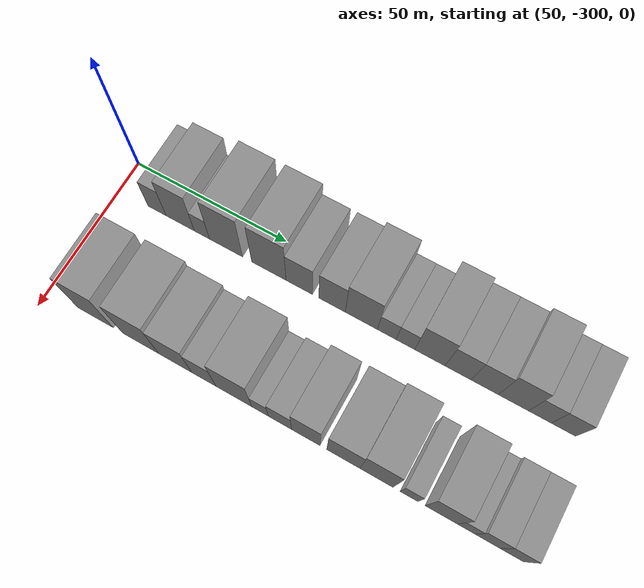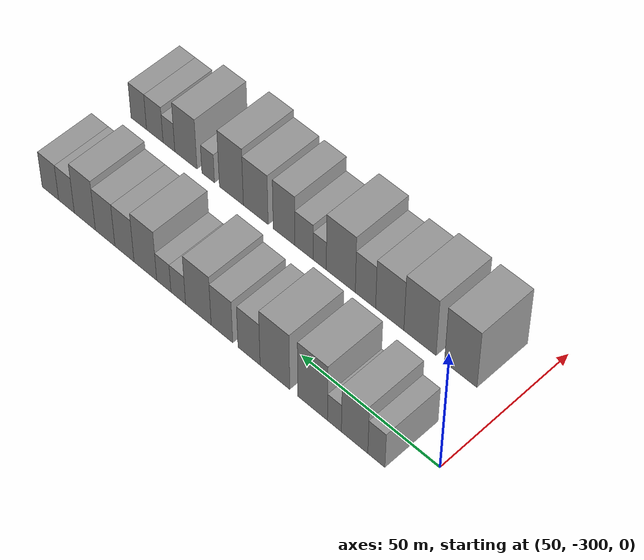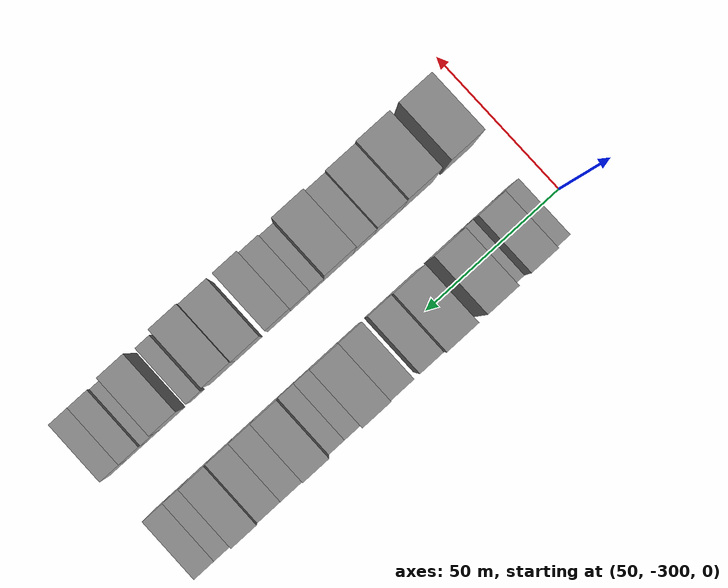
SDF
<sdf version="1.6">
 <world name="default">
  <model name="building_1">
   <static>1</static>
   <pose>50.0000 -286.9700 0 0.000000 0.000000 0.000000</pose>
   <link name="link">
    <pose>0 0 7.50 0 0 0</pose>
    <collision name="collision"><geometry><box><size>20.0000 6.0599 15.0000</size></box></geometry></collision>
    <visual name="visual">
     <cast_shadows>0</cast_shadows>
     <geometry><box><size>20.0000 6.0599 15.0000</size></box></geometry>
     <material>
      <script>
       <uri>model://grey_wall/materials/scripts</uri>
       <uri>model://grey_wall/materials/textures</uri>
       <name>vrc/grey_wall</name>
      </script>
     </material>
    </visual>
   </link>
  </model>
  <model name="building_2">
   <static>1</static>
   <pose>50.0000 -279.1994 0 0.000000 0.000000 0.000000</pose>
   <link name="link">
    <pose>0 0 10.50 0 0 0</pose>
    <collision name="collision"><geometry><box><size>20.0000 9.4813 21.0000</size></box></geometry></collision>
    <visual name="visual">
     <cast_shadows>0</cast_shadows>
     <geometry><box><size>20.0000 9.4813 21.0000</size></box></geometry>
     <material>
      <script>
       <uri>model://grey_wall/materials/scripts</uri>
       <uri>model://grey_wall/materials/textures</uri>
       <name>vrc/grey_wall</name>
      </script>
     </material>
    </visual>
   </link>
  </model>
  <model name="building_3">
   <static>1</static>
   <pose>50.0000 -271.9404 0 0.000000 0.000000 0.000000</pose>
   <link name="link">
    <pose>0 0 6.00 0 0 0</pose>
    <collision name="collision"><geometry><box><size>20.0000 5.0366 12.0000</size></box></geometry></collision>
    <visual name="visual">
     <cast_shadows>0</cast_shadows>
     <geometry><box><size>20.0000 5.0366 12.0000</size></box></geometry>
     <material>
      <script>
       <uri>model://grey_wall/materials/scripts</uri>
       <uri>model://grey_wall/materials/textures</uri>
       <name>vrc/grey_wall</name>
      </script>
     </material>
    </visual>
   </link>
  </model>
  <model name="building_4">
   <static>1</static>
   <pose>50.0000 -263.9885 0 0.000000 0.000000 0.000000</pose>
   <link name="link">
    <pose>0 0 12.00 0 0 0</pose>
    <collision name="collision"><geometry><box><size>20.0000 10.8672 24.0000</size></box></geometry></collision>
    <visual name="visual">
     <cast_shadows>0</cast_shadows>
     <geometry><box><size>20.0000 10.8672 24.0000</size></box></geometry>
     <material>
      <script>
       <uri>model://grey_wall/materials/scripts</uri>
       <uri>model://grey_wall/materials/textures</uri>
       <name>vrc/grey_wall</name>
      </script>
     </material>
    </visual>
   </link>
  </model>
  <model name="building_5">
   <static>1</static>
   <pose>50.0000 -250.0232 0 0.000000 0.000000 0.000000</pose>
   <link name="link">
    <pose>0 0 12.00 0 0 0</pose>
    <collision name="collision"><geometry><box><size>20.0000 11.0633 24.0000</size></box></geometry></collision>
    <visual name="visual">
     <cast_shadows>0</cast_shadows>
     <geometry><box><size>20.0000 11.0633 24.0000</size></box></geometry>
     <material>
      <script>
       <uri>model://grey_wall/materials/scripts</uri>
       <uri>model://grey_wall/materials/textures</uri>
       <name>vrc/grey_wall</name>
      </script>
     </material>
    </visual>
   </link>
  </model>
  <model name="building_6">
   <static>1</static>
   <pose>50.0000 -240.3113 0 0.000000 0.000000 0.000000</pose>
   <link name="link">
    <pose>0 0 9.00 0 0 0</pose>
    <collision name="collision"><geometry><box><size>20.0000 8.3603 18.0000</size></box></geometry></collision>
    <visual name="visual">
     <cast_shadows>0</cast_shadows>
     <geometry><box><size>20.0000 8.3603 18.0000</size></box></geometry>
     <material>
      <script>
       <uri>model://grey_wall/materials/scripts</uri>
       <uri>model://grey_wall/materials/textures</uri>
       <name>vrc/grey_wall</name>
      </script>
     </material>
    </visual>
   </link>
  </model>
  <model name="building_7">
   <static>1</static>
   <pose>50.0000 -229.9773 0 0.000000 0.000000 0.000000</pose>
   <link name="link">
    <pose>0 0 9.00 0 0 0</pose>
    <collision name="collision"><geometry><box><size>20.0000 8.3078 18.0000</size></box></geometry></collision>
    <visual name="visual">
     <cast_shadows>0</cast_shadows>
     <geometry><box><size>20.0000 8.3078 18.0000</size></box></geometry>
     <material>
      <script>
       <uri>model://grey_wall/materials/scripts</uri>
       <uri>model://grey_wall/materials/textures</uri>
       <name>vrc/grey_wall</name>
      </script>
     </material>
    </visual>
   </link>
  </model>
  <model name="building_8">
   <static>1</static>
   <pose>50.0000 -220.8334 0 0.000000 0.000000 0.000000</pose>
   <link name="link">
    <pose>0 0 10.50 0 0 0</pose>
    <collision name="collision"><geometry><box><size>20.0000 9.9800 21.0000</size></box></geometry></collision>
    <visual name="visual">
     <cast_shadows>0</cast_shadows>
     <geometry><box><size>20.0000 9.9800 21.0000</size></box></geometry>
     <material>
      <script>
       <uri>model://grey_wall/materials/scripts</uri>
       <uri>model://grey_wall/materials/textures</uri>
       <name>vrc/grey_wall</name>
      </script>
     </material>
    </visual>
   </link>
  </model>
  <model name="building_9">
   <static>1</static>
   <pose>50.0000 -212.9741 0 0.000000 0.000000 0.000000</pose>
   <link name="link">
    <pose>0 0 6.00 0 0 0</pose>
    <collision name="collision"><geometry><box><size>20.0000 5.7386 12.0000</size></box></geometry></collision>
    <visual name="visual">
     <cast_shadows>0</cast_shadows>
     <geometry><box><size>20.0000 5.7386 12.0000</size></box></geometry>
     <material>
      <script>
       <uri>model://grey_wall/materials/scripts</uri>
       <uri>model://grey_wall/materials/textures</uri>
       <name>vrc/grey_wall</name>
      </script>
     </material>
    </visual>
   </link>
  </model>
  <model name="building_10">
   <static>1</static>
   <pose>50.0000 -207.2779 0 0.000000 0.000000 0.000000</pose>
   <link name="link">
    <pose>0 0 6.00 0 0 0</pose>
    <collision name="collision"><geometry><box><size>20.0000 5.6538 12.0000</size></box></geometry></collision>
    <visual name="visual">
     <cast_shadows>0</cast_shadows>
     <geometry><box><size>20.0000 5.6538 12.0000</size></box></geometry>
     <material>
      <script>
       <uri>model://grey_wall/materials/scripts</uri>
       <uri>model://grey_wall/materials/textures</uri>
       <name>vrc/grey_wall</name>
      </script>
     </material>
    </visual>
   </link>
  </model>
  <model name="building_11">
   <static>1</static>
   <pose>50.0000 -199.9034 0 0.000000 0.000000 0.000000</pose>
   <link name="link">
    <pose>0 0 10.50 0 0 0</pose>
    <collision name="collision"><geometry><box><size>20.0000 9.0951 21.0000</size></box></geometry></collision>
    <visual name="visual">
     <cast_shadows>0</cast_shadows>
     <geometry><box><size>20.0000 9.0951 21.0000</size></box></geometry>
     <material>
      <script>
       <uri>model://grey_wall/materials/scripts</uri>
       <uri>model://grey_wall/materials/textures</uri>
       <name>vrc/grey_wall</name>
      </script>
     </material>
    </visual>
   </link>
  </model>
  <model name="building_12">
   <static>1</static>
   <pose>50.0000 -191.4771 0 0.000000 0.000000 0.000000</pose>
   <link name="link">
    <pose>0 0 9.00 0 0 0</pose>
    <collision name="collision"><geometry><box><size>20.0000 7.7576 18.0000</size></box></geometry></collision>
    <visual name="visual">
     <cast_shadows>0</cast_shadows>
     <geometry><box><size>20.0000 7.7576 18.0000</size></box></geometry>
     <material>
      <script>
       <uri>model://grey_wall/materials/scripts</uri>
       <uri>model://grey_wall/materials/textures</uri>
       <name>vrc/grey_wall</name>
      </script>
     </material>
    </visual>
   </link>
  </model>
  <model name="building_13">
   <static>1</static>
   <pose>50.0000 -183.5973 0 0.000000 0.000000 0.000000</pose>
   <link name="link">
    <pose>0 0 9.00 0 0 0</pose>
    <collision name="collision"><geometry><box><size>20.0000 8.0020 18.0000</size></box></geometry></collision>
    <visual name="visual">
     <cast_shadows>0</cast_shadows>
     <geometry><box><size>20.0000 8.0020 18.0000</size></box></geometry>
     <material>
      <script>
       <uri>model://grey_wall/materials/scripts</uri>
       <uri>model://grey_wall/materials/textures</uri>
       <name>vrc/grey_wall</name>
      </script>
     </material>
    </visual>
   </link>
  </model>
  <model name="building_14">
   <static>1</static>
   <pose>50.0000 -175.2231 0 0.000000 0.000000 0.000000</pose>
   <link name="link">
    <pose>0 0 10.50 0 0 0</pose>
    <collision name="collision"><geometry><box><size>20.0000 8.7465 21.0000</size></box></geometry></collision>
    <visual name="visual">
     <cast_shadows>0</cast_shadows>
     <geometry><box><size>20.0000 8.7465 21.0000</size></box></geometry>
     <material>
      <script>
       <uri>model://grey_wall/materials/scripts</uri>
       <uri>model://grey_wall/materials/textures</uri>
       <name>vrc/grey_wall</name>
      </script>
     </material>
    </visual>
   </link>
  </model>
  <model name="building_15">
   <static>1</static>
   <pose>50.0000 -167.5827 0 0.000000 0.000000 0.000000</pose>
   <link name="link">
    <pose>0 0 7.50 0 0 0</pose>
    <collision name="collision"><geometry><box><size>20.0000 6.5344 15.0000</size></box></geometry></collision>
    <visual name="visual">
     <cast_shadows>0</cast_shadows>
     <geometry><box><size>20.0000 6.5344 15.0000</size></box></geometry>
     <material>
      <script>
       <uri>model://grey_wall/materials/scripts</uri>
       <uri>model://grey_wall/materials/textures</uri>
       <name>vrc/grey_wall</name>
      </script>
     </material>
    </visual>
   </link>
  </model>
  <model name="building_16">
   <static>1</static>
   <pose>50.0000 -160.8261 0 0.000000 0.000000 0.000000</pose>
   <link name="link">
    <pose>0 0 7.50 0 0 0</pose>
    <collision name="collision"><geometry><box><size>20.0000 6.9788 15.0000</size></box></geometry></collision>
    <visual name="visual">
     <cast_shadows>0</cast_shadows>
     <geometry><box><size>20.0000 6.9788 15.0000</size></box></geometry>
     <material>
      <script>
       <uri>model://grey_wall/materials/scripts</uri>
       <uri>model://grey_wall/materials/textures</uri>
       <name>vrc/grey_wall</name>
      </script>
     </material>
    </visual>
   </link>
  </model>
  <model name="building_63">
   <static>1</static>
   <pose>85.0000 -284.2010 0 0.000000 0.000000 0.000000</pose>
   <link name="link">
    <pose>0 0 12.00 0 0 0</pose>
    <collision name="collision"><geometry><box><size>20.0000 11.5980 24.0000</size></box></geometry></collision>
    <visual name="visual">
     <cast_shadows>0</cast_shadows>
     <geometry><box><size>20.0000 11.5980 24.0000</size></box></geometry>
     <material>
      <script>
       <uri>model://grey_wall/materials/scripts</uri>
       <uri>model://grey_wall/materials/textures</uri>
       <name>vrc/grey_wall</name>
      </script>
     </material>
    </visual>
   </link>
  </model>
  <model name="building_64">
   <static>1</static>
   <pose>85.0000 -269.5314 0 0.000000 0.000000 0.000000</pose>
   <link name="link">
    <pose>0 0 12.00 0 0 0</pose>
    <collision name="collision"><geometry><box><size>20.0000 11.7412 24.0000</size></box></geometry></collision>
    <visual name="visual">
     <cast_shadows>0</cast_shadows>
     <geometry><box><size>20.0000 11.7412 24.0000</size></box></geometry>
     <material>
      <script>
       <uri>model://grey_wall/materials/scripts</uri>
       <uri>model://grey_wall/materials/textures</uri>
       <name>vrc/grey_wall</name>
      </script>
     </material>
    </visual>
   </link>
  </model>
  <model name="building_65">
   <static>1</static>
   <pose>85.0000 -258.4380 0 0.000000 0.000000 0.000000</pose>
   <link name="link">
    <pose>0 0 10.50 0 0 0</pose>
    <collision name="collision"><geometry><box><size>20.0000 10.4457 21.0000</size></box></geometry></collision>
    <visual name="visual">
     <cast_shadows>0</cast_shadows>
     <geometry><box><size>20.0000 10.4457 21.0000</size></box></geometry>
     <material>
      <script>
       <uri>model://grey_wall/materials/scripts</uri>
       <uri>model://grey_wall/materials/textures</uri>
       <name>vrc/grey_wall</name>
      </script>
     </material>
    </visual>
   </link>
  </model>
  <model name="building_66">
   <static>1</static>
   <pose>85.0000 -249.4200 0 0.000000 0.000000 0.000000</pose>
   <link name="link">
    <pose>0 0 9.00 0 0 0</pose>
    <collision name="collision"><geometry><box><size>20.0000 7.5903 18.0000</size></box></geometry></collision>
    <visual name="visual">
     <cast_shadows>0</cast_shadows>
     <geometry><box><size>20.0000 7.5903 18.0000</size></box></geometry>
     <material>
      <script>
       <uri>model://grey_wall/materials/scripts</uri>
       <uri>model://grey_wall/materials/textures</uri>
       <name>vrc/grey_wall</name>
      </script>
     </material>
    </visual>
   </link>
  </model>
  <model name="building_67">
   <static>1</static>
   <pose>85.0000 -240.1223 0 0.000000 0.000000 0.000000</pose>
   <link name="link">
    <pose>0 0 12.00 0 0 0</pose>
    <collision name="collision"><geometry><box><size>20.0000 11.0051 24.0000</size></box></geometry></collision>
    <visual name="visual">
     <cast_shadows>0</cast_shadows>
     <geometry><box><size>20.0000 11.0051 24.0000</size></box></geometry>
     <material>
      <script>
       <uri>model://grey_wall/materials/scripts</uri>
       <uri>model://grey_wall/materials/textures</uri>
       <name>vrc/grey_wall</name>
      </script>
     </material>
    </visual>
   </link>
  </model>
  <model name="building_68">
   <static>1</static>
   <pose>85.0000 -232.0819 0 0.000000 0.000000 0.000000</pose>
   <link name="link">
    <pose>0 0 6.00 0 0 0</pose>
    <collision name="collision"><geometry><box><size>20.0000 5.0756 12.0000</size></box></geometry></collision>
    <visual name="visual">
     <cast_shadows>0</cast_shadows>
     <geometry><box><size>20.0000 5.0756 12.0000</size></box></geometry>
     <material>
      <script>
       <uri>model://grey_wall/materials/scripts</uri>
       <uri>model://grey_wall/materials/textures</uri>
       <name>vrc/grey_wall</name>
      </script>
     </material>
    </visual>
   </link>
  </model>
  <model name="building_69">
   <static>1</static>
   <pose>85.0000 -226.0419 0 0.000000 0.000000 0.000000</pose>
   <link name="link">
    <pose>0 0 7.50 0 0 0</pose>
    <collision name="collision"><geometry><box><size>20.0000 7.0043 15.0000</size></box></geometry></collision>
    <visual name="visual">
     <cast_shadows>0</cast_shadows>
     <geometry><box><size>20.0000 7.0043 15.0000</size></box></geometry>
     <material>
      <script>
       <uri>model://grey_wall/materials/scripts</uri>
       <uri>model://grey_wall/materials/textures</uri>
       <name>vrc/grey_wall</name>
      </script>
     </material>
    </visual>
   </link>
  </model>
  <model name="building_70">
   <static>1</static>
   <pose>85.0000 -218.3045 0 0.000000 0.000000 0.000000</pose>
   <link name="link">
    <pose>0 0 10.50 0 0 0</pose>
    <collision name="collision"><geometry><box><size>20.0000 8.4705 21.0000</size></box></geometry></collision>
    <visual name="visual">
     <cast_shadows>0</cast_shadows>
     <geometry><box><size>20.0000 8.4705 21.0000</size></box></geometry>
     <material>
      <script>
       <uri>model://grey_wall/materials/scripts</uri>
       <uri>model://grey_wall/materials/textures</uri>
       <name>vrc/grey_wall</name>
      </script>
     </material>
    </visual>
   </link>
  </model>
  <model name="building_71">
   <static>1</static>
   <pose>85.0000 -207.1578 0 0.000000 0.000000 0.000000</pose>
   <link name="link">
    <pose>0 0 10.50 0 0 0</pose>
    <collision name="collision"><geometry><box><size>20.0000 9.8229 21.0000</size></box></geometry></collision>
    <visual name="visual">
     <cast_shadows>0</cast_shadows>
     <geometry><box><size>20.0000 9.8229 21.0000</size></box></geometry>
     <material>
      <script>
       <uri>model://grey_wall/materials/scripts</uri>
       <uri>model://grey_wall/materials/textures</uri>
       <name>vrc/grey_wall</name>
      </script>
     </material>
    </visual>
   </link>
  </model>
  <model name="building_72">
   <static>1</static>
   <pose>85.0000 -197.4354 0 0.000000 0.000000 0.000000</pose>
   <link name="link">
    <pose>0 0 12.00 0 0 0</pose>
    <collision name="collision"><geometry><box><size>20.0000 9.6220 24.0000</size></box></geometry></collision>
    <visual name="visual">
     <cast_shadows>0</cast_shadows>
     <geometry><box><size>20.0000 9.6220 24.0000</size></box></geometry>
     <material>
      <script>
       <uri>model://grey_wall/materials/scripts</uri>
       <uri>model://grey_wall/materials/textures</uri>
       <name>vrc/grey_wall</name>
      </script>
     </material>
    </visual>
   </link>
  </model>
  <model name="building_73">
   <static>1</static>
   <pose>85.0000 -188.0588 0 0.000000 0.000000 0.000000</pose>
   <link name="link">
    <pose>0 0 6.00 0 0 0</pose>
    <collision name="collision"><geometry><box><size>20.0000 5.1311 12.0000</size></box></geometry></collision>
    <visual name="visual">
     <cast_shadows>0</cast_shadows>
     <geometry><box><size>20.0000 5.1311 12.0000</size></box></geometry>
     <material>
      <script>
       <uri>model://grey_wall/materials/scripts</uri>
       <uri>model://grey_wall/materials/textures</uri>
       <name>vrc/grey_wall</name>
      </script>
     </material>
    </visual>
   </link>
  </model>
  <model name="building_74">
   <static>1</static>
   <pose>85.0000 -178.9331 0 0.000000 0.000000 0.000000</pose>
   <link name="link">
    <pose>0 0 10.50 0 0 0</pose>
    <collision name="collision"><geometry><box><size>20.0000 9.1203 21.0000</size></box></geometry></collision>
    <visual name="visual">
     <cast_shadows>0</cast_shadows>
     <geometry><box><size>20.0000 9.1203 21.0000</size></box></geometry>
     <material>
      <script>
       <uri>model://grey_wall/materials/scripts</uri>
       <uri>model://grey_wall/materials/textures</uri>
       <name>vrc/grey_wall</name>
      </script>
     </material>
    </visual>
   </link>
  </model>
  <model name="building_75">
   <static>1</static>
   <pose>85.0000 -171.9211 0 0.000000 0.000000 0.000000</pose>
   <link name="link">
    <pose>0 0 6.00 0 0 0</pose>
    <collision name="collision"><geometry><box><size>20.0000 4.9037 12.0000</size></box></geometry></collision>
    <visual name="visual">
     <cast_shadows>0</cast_shadows>
     <geometry><box><size>20.0000 4.9037 12.0000</size></box></geometry>
     <material>
      <script>
       <uri>model://grey_wall/materials/scripts</uri>
       <uri>model://grey_wall/materials/textures</uri>
       <name>vrc/grey_wall</name>
      </script>
     </material>
    </visual>
   </link>
  </model>
  <model name="building_76">
   <static>1</static>
   <pose>85.0000 -166.0068 0 0.000000 0.000000 0.000000</pose>
   <link name="link">
    <pose>0 0 7.50 0 0 0</pose>
    <collision name="collision"><geometry><box><size>20.0000 6.9249 15.0000</size></box></geometry></collision>
    <visual name="visual">
     <cast_shadows>0</cast_shadows>
     <geometry><box><size>20.0000 6.9249 15.0000</size></box></geometry>
     <material>
      <script>
       <uri>model://grey_wall/materials/scripts</uri>
       <uri>model://grey_wall/materials/textures</uri>
       <name>vrc/grey_wall</name>
      </script>
     </material>
    </visual>
   </link>
  </model>
  <model name="building_77">
   <static>1</static>
   <pose>85.0000 -159.2732 0 0.000000 0.000000 0.000000</pose>
   <link name="link">
    <pose>0 0 7.50 0 0 0</pose>
    <collision name="collision"><geometry><box><size>20.0000 6.5422 15.0000</size></box></geometry></collision>
    <visual name="visual">
     <cast_shadows>0</cast_shadows>
     <geometry><box><size>20.0000 6.5422 15.0000</size></box></geometry>
     <material>
      <script>
       <uri>model://grey_wall/materials/scripts</uri>
       <uri>model://grey_wall/materials/textures</uri>
       <name>vrc/grey_wall</name>
      </script>
     </material>
    </visual>
   </link>
  </model>
 </world>
</sdf>
